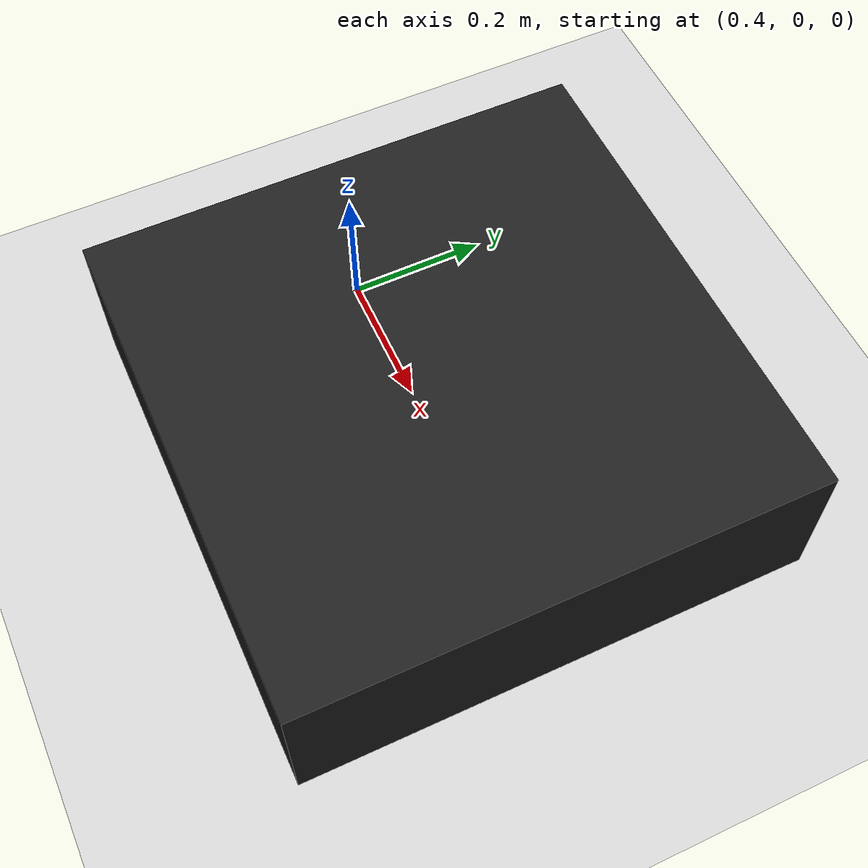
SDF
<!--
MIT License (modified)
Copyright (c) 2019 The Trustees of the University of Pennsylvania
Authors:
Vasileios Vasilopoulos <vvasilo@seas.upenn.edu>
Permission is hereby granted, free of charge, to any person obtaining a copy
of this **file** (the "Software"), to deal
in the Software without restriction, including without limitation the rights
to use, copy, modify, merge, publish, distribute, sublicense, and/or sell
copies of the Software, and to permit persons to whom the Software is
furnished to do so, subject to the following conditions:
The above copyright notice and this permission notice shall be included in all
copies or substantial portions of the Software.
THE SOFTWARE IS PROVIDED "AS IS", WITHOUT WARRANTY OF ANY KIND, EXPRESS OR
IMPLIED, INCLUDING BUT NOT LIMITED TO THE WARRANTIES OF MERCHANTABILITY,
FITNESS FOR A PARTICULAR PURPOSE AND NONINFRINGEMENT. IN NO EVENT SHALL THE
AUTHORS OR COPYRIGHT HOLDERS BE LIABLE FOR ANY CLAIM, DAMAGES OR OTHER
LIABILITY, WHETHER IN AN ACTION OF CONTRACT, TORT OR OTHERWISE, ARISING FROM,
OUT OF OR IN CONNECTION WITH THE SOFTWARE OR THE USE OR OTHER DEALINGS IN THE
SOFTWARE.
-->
<?xml version="1.0" ?>

<sdf version="1.4">
  <world name="default">
    <!-- Target real time factor is the product of max_step_size and real_time_update_rate -->
    <!-- Negative real_time_update_rate means that Gazebo will run as fast as possible -->
    <!-- A max_step_size of 0.0003 seems to work for Minitaur and 0.00005 for Vision -->
    <physics type="ode">
      <max_step_size>0.0001</max_step_size>
      <real_time_update_rate>10000</real_time_update_rate>
    </physics>
    <include>
      <uri>model://ground_plane</uri>
    </include>
    <include>
      <uri>model://sun</uri>
    </include>
    <include>
      <uri>model://box_short</uri>
      <name>box_short</name>
      <pose>0.7 0 0 0 0 0</pose>
    </include>
  </world>
</sdf>

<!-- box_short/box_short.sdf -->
<sdf version='1.6'>
  <model name='box_short'>
    <link name='box'>
      <pose frame=''>0 0 0 0 -0 0</pose>
      <inertial>
        <mass>200</mass>
        <inertia>
          <ixx>4.78</ixx>
          <ixy>0</ixy>
          <ixz>0</ixz>
          <iyy>6.26</iyy>
          <iyz>0</iyz>
          <izz>8.235</izz>
        </inertia>
        <pose frame=''>0 0 0.11 0 -0 0</pose>
      </inertial>
      <gravity>1</gravity>
      <self_collide>0</self_collide>
      <kinematic>0</kinematic>

      <visual name='box_visual'>
        <pose frame=''>0 0 0.11 0 -0 0</pose>
        <geometry>
          <box>
            <size>0.72 0.72 0.22</size>
          </box>
        </geometry>
        <material>
          <lighting>1</lighting>
          <script>
            <uri>file://media/materials/scripts/gazebo.material</uri>
            <name>Gazebo/Black</name>
          </script>
        </material>
        <cast_shadows>1</cast_shadows>
        <transparency>0</transparency>
      </visual>
      <collision name='box_collision'>
        <laser_retro>0</laser_retro>
        <max_contacts>10</max_contacts>
        <pose frame=''>0 0 0.11 0 -0 0</pose>
        <geometry>
          <box>
            <size>0.72 0.72 0.22</size>
          </box>
        </geometry>
        <surface>
          <friction>
            <ode>
              <mu>1</mu>
              <mu2>1</mu2>
              <fdir1>0 0 0</fdir1>
              <slip1>0</slip1>
              <slip2>0</slip2>
            </ode>
            <torsional>
              <coefficient>1</coefficient>
              <patch_radius>0</patch_radius>
              <surface_radius>0</surface_radius>
              <use_patch_radius>1</use_patch_radius>
              <ode>
                <slip>0</slip>
              </ode>
            </torsional>
          </friction>
          <bounce>
            <restitution_coefficient>0</restitution_coefficient>
            <threshold>1e+06</threshold>
          </bounce>
          <contact>
            <collide_without_contact>0</collide_without_contact>
            <collide_without_contact_bitmask>1</collide_without_contact_bitmask>
            <collide_bitmask>1</collide_bitmask>
            <ode>
              <soft_cfm>0</soft_cfm>
              <soft_erp>0.2</soft_erp>
              <kp>1e+13</kp>
              <kd>1</kd>
              <max_vel>0.01</max_vel>
              <min_depth>0</min_depth>
            </ode>
            <bullet>
              <split_impulse>1</split_impulse>
              <split_impulse_penetration_threshold>-0.01</split_impulse_penetration_threshold>
              <soft_cfm>0</soft_cfm>
              <soft_erp>0.2</soft_erp>
              <kp>1e+13</kp>
              <kd>1</kd>
            </bullet>
          </contact>
        </surface>
      </collision>
    </link>

    <static>0</static>
    <allow_auto_disable>1</allow_auto_disable>
  </model>
</sdf>
